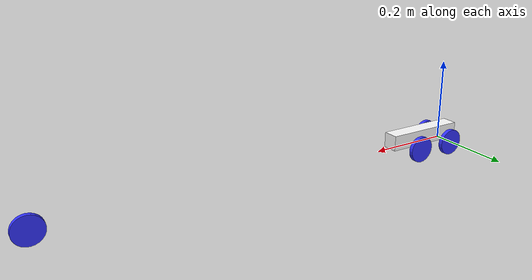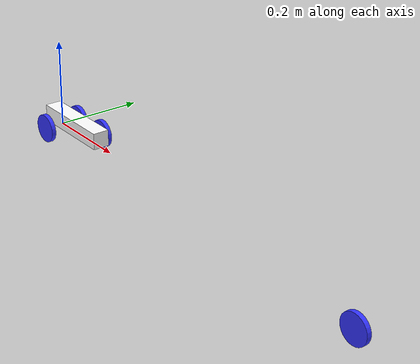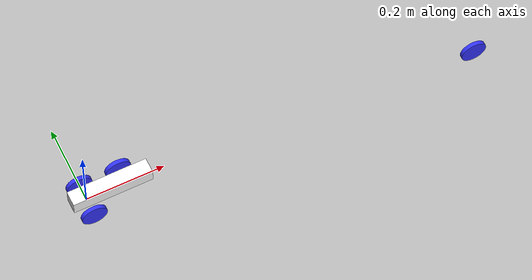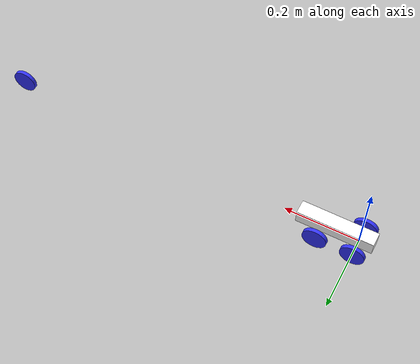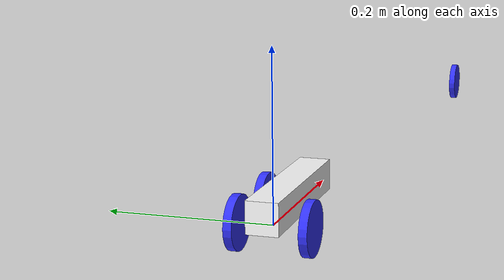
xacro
<?xml version="1.0"?>

    <!-- Example link -->

<robot xmlns:xacro="http://www.ros.org/wiki/xacro"  name="robot">

    <xacro:include filename="robot_core.xacro"/>

</robot>

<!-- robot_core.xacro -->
<robot xmlns:xacro="http://www.ros.org/wiki/xacro">

    <xacro:include filename="inertial_macros.xacro"/>

    <material name="white">
        <color rgba = "1 1 1 1"/>
    </material>
    <material name="orange">
        <color rgba = "1 0.3 0.1 1"/>
    </material>
    <material name="blue">
        <color rgba = "0.2 0.2 1 1"/>
    </material>
    <material name="black">
        <color rgba = "0 0 0 1"/>
    </material>

    <!-- BASE  LINK -->
    <link name="base_link"></link>

    <!-- CHASSIS -->
    <joint name="chassis_joint" type="fixed">
        <parent link="base_link"/>
        <child link="chassis"/>
        <origin xyz="-0.04 0 0"/>
    </joint>

    <link name="chassis">
        <visual>
            <origin xyz="0.1016 0 0.01905"/>
            <geometry>
                <!-- skinny version of chassis-->
                <box size="0.2032 0.03815 0.0381"/>
            </geometry>
            <material name="white"/>
        </visual>

        <collision>
            <origin xyz="0.1016 0 0.01905"/>
            <geometry>
                <box size="0.2032 0.03815 0.0381"/> <!-- skinny version of chassis-->
            </geometry>
        </collision>
        <!-- skinny chassis-->
        <xacro:inertial_box mass="0.5" x="0.2032" y="0.03815" z="0.0381">
            <origin xyz="0.1016 0 0.01905" rpy="0 0 0"/>
        </xacro:inertial_box>
    </link>

    <gazebo reference="chassis">
        <material>Gazebo/White</material>
    </gazebo>

    <!--LEFT REAR DRIVE WHEEL-->
    <joint name="left_wheel_joint" type="continuous">
        <parent link="base_link"/>
        <child link="left_wheel"/>
        <origin xyz="0 0.0431 0" rpy="-${pi/2} 0 0"/>
        <axis xyz="0 0 1"/>
    </joint>
    <link name="left_wheel">
        <visual>
            <geometry>
                <cylinder radius="0.0325" length="0.01"/>
            </geometry>
            <material name="blue"/>
        </visual>
        <collision>
            <geometry>
                <cylinder radius="0.0325" length="0.01"/>
            </geometry>
        </collision>
        <xacro:inertial_cylinder mass="0.1" length="0.01" radius="0.0325">
            <origin xyz="0 0 0" rpy="0 0 0"/>
        </xacro:inertial_cylinder>
    </link>

    <!--RIGHT REAR DRIVE WHEEL-->
    <joint name="right_wheel_joint" type="continuous">
        <parent link="base_link"/>
        <child link="right_wheel"/>
        <origin xyz="0 -0.0431 0" rpy="${pi/2} 0 0"/>
        <axis xyz="0 0 -1"/>
    </joint>

    <link name="right_wheel">
        <visual>
            <geometry>
                <cylinder radius="0.0325" length="0.01"/>
            </geometry>
            <material name="blue"/>
        </visual>
        <collision>
            <geometry>
                <cylinder radius="0.0325" length="0.01"/>
            </geometry>
        </collision>
        <xacro:inertial_cylinder mass="0.1" length="0.01" radius="0.0325">
            <origin xyz="0 0 0" rpy="0 0 0"/>
        </xacro:inertial_cylinder>
    </link>

    <!--LEFT FRONT WHEEL LINK-->
    <joint name="left_front_wheel_joint" type="continuous">
        <parent link="base_link"/>
        <child link="left_front_wheel"/>
        <origin xyz="0.1 0.0431 0" rpy="-${pi/2} 0 0"/>
        <axis xyz="0 0 1"/>
    </joint>

    <link name="left_front_wheel">
        <visual>
            <geometry>
                <cylinder radius="0.0325" length="0.01"/>
            </geometry>
            <material name="blue"/>
        </visual>
        <collision>
            <geometry>
                <cylinder radius="0.0325" length="0.01"/>
            </geometry>
        </collision>
        <xacro:inertial_cylinder mass="0.1" length="0.01" radius="0.0325">
            <origin xyz="0 0 0" rpy="0 0 0"/>
        </xacro:inertial_cylinder>
    </link>
    <!--RIGHT FRONT WHEEL LINK-->

    <joint name="right_front_wheel_joint" type="continuous">
        <parent link="base_link"/>
        <child link="right_front_wheel"/>
        <origin xyz="1 -0.0431 0" rpy="${pi/2} 0 0"/>
        <axis xyz="0 0 -1"/>
    </joint>

    <link name="right_front_wheel">
        <visual>
            <geometry>
                <cylinder radius="0.0325" length="0.01"/>
            </geometry>
            <material name="blue"/>
        </visual>
        <collision>
            <geometry>
                <cylinder radius="0.0325" length="0.01"/>
            </geometry>
        </collision>
        <xacro:inertial_cylinder mass="0.1" length="0.01" radius="0.0325">
            <origin xyz="0 0 0" rpy="0 0 0"/>
        </xacro:inertial_cylinder>
    </link>
</robot>
